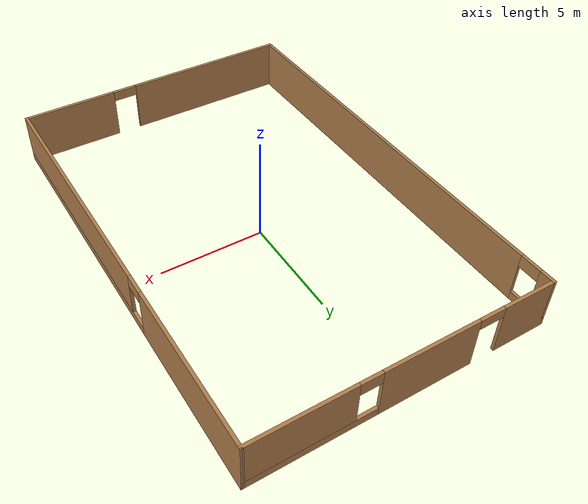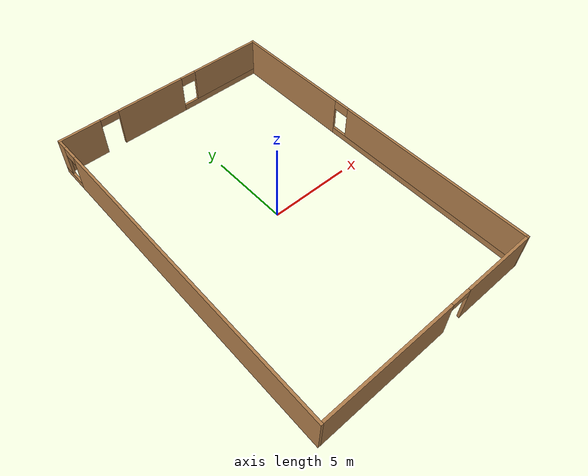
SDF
<?xml version='1.0'?>
<sdf version='1.7'>
  <model name='Vichesta_Building'>
    <pose>0.009244 -0.082778 0 0 -0 0</pose>
    <link name='Wall_4'>
      <pose>-6.92524 -0.000222 0 0 -0 1.5708</pose>
      <visual name='Wall_4_Visual_0'>
        <pose>-0.860708 0 1.25 0 -0 0</pose>
        <geometry>
          <box>
            <size>19.2786 0.15 2.5</size>
          </box>
        </geometry>
        <material>
          <script>
            <uri>file://media/materials/scripts/gazebo.material</uri>
            <name>Gazebo/Wood</name>
          </script>
          <ambient>1 1 1 1</ambient>
        </material>
        <meta>
          <layer>0</layer>
        </meta>
      </visual>
      <collision name='Wall_4_Collision_0'>
        <geometry>
          <box>
            <size>19.2786 0.15 2.5</size>
          </box>
        </geometry>
        <pose>-0.860708 0 1.25 0 -0 0</pose>
      </collision>
      <visual name='Wall_4_Visual_1'>
        <pose>9.63929 0 0.2 0 -0 0</pose>
        <geometry>
          <box>
            <size>1.72142 0.15 0.4</size>
          </box>
        </geometry>
        <material>
          <script>
            <uri>file://media/materials/scripts/gazebo.material</uri>
            <name>Gazebo/Wood</name>
          </script>
          <ambient>1 1 1 1</ambient>
        </material>
        <meta>
          <layer>0</layer>
        </meta>
      </visual>
      <collision name='Wall_4_Collision_1'>
        <geometry>
          <box>
            <size>1.72142 0.15 0.4</size>
          </box>
        </geometry>
        <pose>9.63929 0 0.2 0 -0 0</pose>
      </collision>
      <visual name='Wall_4_Visual_2'>
        <pose>10.1393 0 1.45 0 -0 0</pose>
        <geometry>
          <box>
            <size>0.721417 0.15 2.1</size>
          </box>
        </geometry>
        <material>
          <script>
            <uri>file://media/materials/scripts/gazebo.material</uri>
            <name>Gazebo/Wood</name>
          </script>
          <ambient>1 1 1 1</ambient>
        </material>
        <meta>
          <layer>0</layer>
        </meta>
      </visual>
      <collision name='Wall_4_Collision_2'>
        <geometry>
          <box>
            <size>0.721417 0.15 2.1</size>
          </box>
        </geometry>
        <pose>10.1393 0 1.45 0 -0 0</pose>
      </collision>
      <visual name='Wall_4_Visual_3'>
        <pose>9.27858 0 2.2 0 -0 0</pose>
        <geometry>
          <box>
            <size>1 0.15 0.6</size>
          </box>
        </geometry>
        <material>
          <script>
            <uri>file://media/materials/scripts/gazebo.material</uri>
            <name>Gazebo/Wood</name>
          </script>
          <ambient>1 1 1 1</ambient>
        </material>
        <meta>
          <layer>0</layer>
        </meta>
      </visual>
      <collision name='Wall_4_Collision_3'>
        <geometry>
          <box>
            <size>1 0.15 0.6</size>
          </box>
        </geometry>
        <pose>9.27858 0 2.2 0 -0 0</pose>
      </collision>
    </link>
    <link name='Wall_5'>
      <pose>-0 10.425 0 0 -0 3.2e-05</pose>
      <visual name='Wall_5_Visual_0'>
        <pose>-5.68626 0 1.25 0 -0 0</pose>
        <geometry>
          <box>
            <size>2.62749 0.15 2.5</size>
          </box>
        </geometry>
        <material>
          <script>
            <uri>file://media/materials/scripts/gazebo.material</uri>
            <name>Gazebo/Wood</name>
          </script>
          <ambient>1 1 1 1</ambient>
        </material>
        <meta>
          <layer>0</layer>
        </meta>
      </visual>
      <collision name='Wall_5_Collision_0'>
        <geometry>
          <box>
            <size>2.62749 0.15 2.5</size>
          </box>
        </geometry>
        <pose>-5.68626 0 1.25 0 -0 0</pose>
      </collision>
      <visual name='Wall_5_Visual_1'>
        <pose>-0.953751 0 1.25 0 -0 0</pose>
        <geometry>
          <box>
            <size>4.43752 0.15 2.5</size>
          </box>
        </geometry>
        <material>
          <script>
            <uri>file://media/materials/scripts/gazebo.material</uri>
            <name>Gazebo/Wood</name>
          </script>
          <ambient>1 1 1 1</ambient>
        </material>
        <meta>
          <layer>0</layer>
        </meta>
      </visual>
      <collision name='Wall_5_Collision_1'>
        <geometry>
          <box>
            <size>4.43752 0.15 2.5</size>
          </box>
        </geometry>
        <pose>-0.953751 0 1.25 0 -0 0</pose>
      </collision>
      <visual name='Wall_5_Visual_2'>
        <pose>4.13251 0 0.2 0 -0 0</pose>
        <geometry>
          <box>
            <size>5.73499 0.15 0.4</size>
          </box>
        </geometry>
        <material>
          <script>
            <uri>file://media/materials/scripts/gazebo.material</uri>
            <name>Gazebo/Wood</name>
          </script>
          <ambient>1 1 1 1</ambient>
        </material>
        <meta>
          <layer>0</layer>
        </meta>
      </visual>
      <collision name='Wall_5_Collision_2'>
        <geometry>
          <box>
            <size>5.73499 0.15 0.4</size>
          </box>
        </geometry>
        <pose>4.13251 0 0.2 0 -0 0</pose>
      </collision>
      <visual name='Wall_5_Visual_3'>
        <pose>4.63251 0 1.45 0 -0 0</pose>
        <geometry>
          <box>
            <size>4.73499 0.15 2.1</size>
          </box>
        </geometry>
        <material>
          <script>
            <uri>file://media/materials/scripts/gazebo.material</uri>
            <name>Gazebo/Wood</name>
          </script>
          <ambient>1 1 1 1</ambient>
        </material>
        <meta>
          <layer>0</layer>
        </meta>
      </visual>
      <collision name='Wall_5_Collision_3'>
        <geometry>
          <box>
            <size>4.73499 0.15 2.1</size>
          </box>
        </geometry>
        <pose>4.63251 0 1.45 0 -0 0</pose>
      </collision>
      <visual name='Wall_5_Visual_4'>
        <pose>1.76501 0 2.2 0 -0 0</pose>
        <geometry>
          <box>
            <size>1 0.15 0.6</size>
          </box>
        </geometry>
        <material>
          <script>
            <uri>file://media/materials/scripts/gazebo.material</uri>
            <name>Gazebo/Wood</name>
          </script>
          <ambient>1 1 1 1</ambient>
        </material>
        <meta>
          <layer>0</layer>
        </meta>
      </visual>
      <collision name='Wall_5_Collision_4'>
        <geometry>
          <box>
            <size>1 0.15 0.6</size>
          </box>
        </geometry>
        <pose>1.76501 0 2.2 0 -0 0</pose>
      </collision>
      <visual name='Wall_5_Visual_5'>
        <pose>-3.77251 0 2.25 0 -0 0</pose>
        <geometry>
          <box>
            <size>1.2 0.15 0.5</size>
          </box>
        </geometry>
        <material>
          <script>
            <uri>file://media/materials/scripts/gazebo.material</uri>
            <name>Gazebo/Wood</name>
          </script>
          <ambient>1 1 1 1</ambient>
        </material>
        <meta>
          <layer>0</layer>
        </meta>
      </visual>
      <collision name='Wall_5_Collision_5'>
        <geometry>
          <box>
            <size>1.2 0.15 0.5</size>
          </box>
        </geometry>
        <pose>-3.77251 0 2.25 0 -0 0</pose>
      </collision>
    </link>
    <link name='Wall_6'>
      <pose>6.92524 0.000222 0 0 -0 -1.5708</pose>
      <visual name='Wall_6_Visual_0'>
        <pose>-6.64128 0 1.25 0 -0 0</pose>
        <geometry>
          <box>
            <size>7.71744 0.15 2.5</size>
          </box>
        </geometry>
        <material>
          <script>
            <uri>file://media/materials/scripts/gazebo.material</uri>
            <name>Gazebo/Wood</name>
          </script>
          <ambient>1 1 1 1</ambient>
        </material>
        <meta>
          <layer>0</layer>
        </meta>
      </visual>
      <collision name='Wall_6_Collision_0'>
        <geometry>
          <box>
            <size>7.71744 0.15 2.5</size>
          </box>
        </geometry>
        <pose>-6.64128 0 1.25 0 -0 0</pose>
      </collision>
      <visual name='Wall_6_Visual_1'>
        <pose>3.85872 0 0.2 0 -0 0</pose>
        <geometry>
          <box>
            <size>13.2826 0.15 0.4</size>
          </box>
        </geometry>
        <material>
          <script>
            <uri>file://media/materials/scripts/gazebo.material</uri>
            <name>Gazebo/Wood</name>
          </script>
          <ambient>1 1 1 1</ambient>
        </material>
        <meta>
          <layer>0</layer>
        </meta>
      </visual>
      <collision name='Wall_6_Collision_1'>
        <geometry>
          <box>
            <size>13.2826 0.15 0.4</size>
          </box>
        </geometry>
        <pose>3.85872 0 0.2 0 -0 0</pose>
      </collision>
      <visual name='Wall_6_Visual_2'>
        <pose>4.35872 0 1.45 0 -0 0</pose>
        <geometry>
          <box>
            <size>12.2826 0.15 2.1</size>
          </box>
        </geometry>
        <material>
          <script>
            <uri>file://media/materials/scripts/gazebo.material</uri>
            <name>Gazebo/Wood</name>
          </script>
          <ambient>1 1 1 1</ambient>
        </material>
        <meta>
          <layer>0</layer>
        </meta>
      </visual>
      <collision name='Wall_6_Collision_2'>
        <geometry>
          <box>
            <size>12.2826 0.15 2.1</size>
          </box>
        </geometry>
        <pose>4.35872 0 1.45 0 -0 0</pose>
      </collision>
      <visual name='Wall_6_Visual_3'>
        <pose>-2.28256 0 2.2 0 -0 0</pose>
        <geometry>
          <box>
            <size>1 0.15 0.6</size>
          </box>
        </geometry>
        <material>
          <script>
            <uri>file://media/materials/scripts/gazebo.material</uri>
            <name>Gazebo/Wood</name>
          </script>
          <ambient>1 1 1 1</ambient>
        </material>
        <meta>
          <layer>0</layer>
        </meta>
      </visual>
      <collision name='Wall_6_Collision_3'>
        <geometry>
          <box>
            <size>1 0.15 0.6</size>
          </box>
        </geometry>
        <pose>-2.28256 0 2.2 0 -0 0</pose>
      </collision>
    </link>
    <link name='Wall_8'>
      <pose>-0 -10.425 0 0 -0 3.2e-05</pose>
      <visual name='Wall_8_Visual_0'>
        <pose>-2.90462 0 1.25 0 -0 0</pose>
        <geometry>
          <box>
            <size>8.19076 0.15 2.5</size>
          </box>
        </geometry>
        <material>
          <script>
            <uri>file://media/materials/scripts/gazebo.material</uri>
            <name>Gazebo/Wood</name>
          </script>
          <ambient>1 1 1 1</ambient>
        </material>
        <meta>
          <layer>0</layer>
        </meta>
      </visual>
      <collision name='Wall_8_Collision_0'>
        <geometry>
          <box>
            <size>8.19076 0.15 2.5</size>
          </box>
        </geometry>
        <pose>-2.90462 0 1.25 0 -0 0</pose>
      </collision>
      <visual name='Wall_8_Visual_1'>
        <pose>4.69538 0 1.25 0 -0 0</pose>
        <geometry>
          <box>
            <size>4.60924 0.15 2.5</size>
          </box>
        </geometry>
        <material>
          <script>
            <uri>file://media/materials/scripts/gazebo.material</uri>
            <name>Gazebo/Wood</name>
          </script>
          <ambient>1 1 1 1</ambient>
        </material>
        <meta>
          <layer>0</layer>
        </meta>
      </visual>
      <collision name='Wall_8_Collision_1'>
        <geometry>
          <box>
            <size>4.60924 0.15 2.5</size>
          </box>
        </geometry>
        <pose>4.69538 0 1.25 0 -0 0</pose>
      </collision>
      <visual name='Wall_8_Visual_2'>
        <pose>1.79076 0 2.25 0 -0 0</pose>
        <geometry>
          <box>
            <size>1.2 0.15 0.5</size>
          </box>
        </geometry>
        <material>
          <script>
            <uri>file://media/materials/scripts/gazebo.material</uri>
            <name>Gazebo/Wood</name>
          </script>
          <ambient>1 1 1 1</ambient>
        </material>
        <meta>
          <layer>0</layer>
        </meta>
      </visual>
      <collision name='Wall_8_Collision_2'>
        <geometry>
          <box>
            <size>1.2 0.15 0.5</size>
          </box>
        </geometry>
        <pose>1.79076 0 2.25 0 -0 0</pose>
      </collision>
    </link>
    <static>1</static>
  </model>
</sdf>
